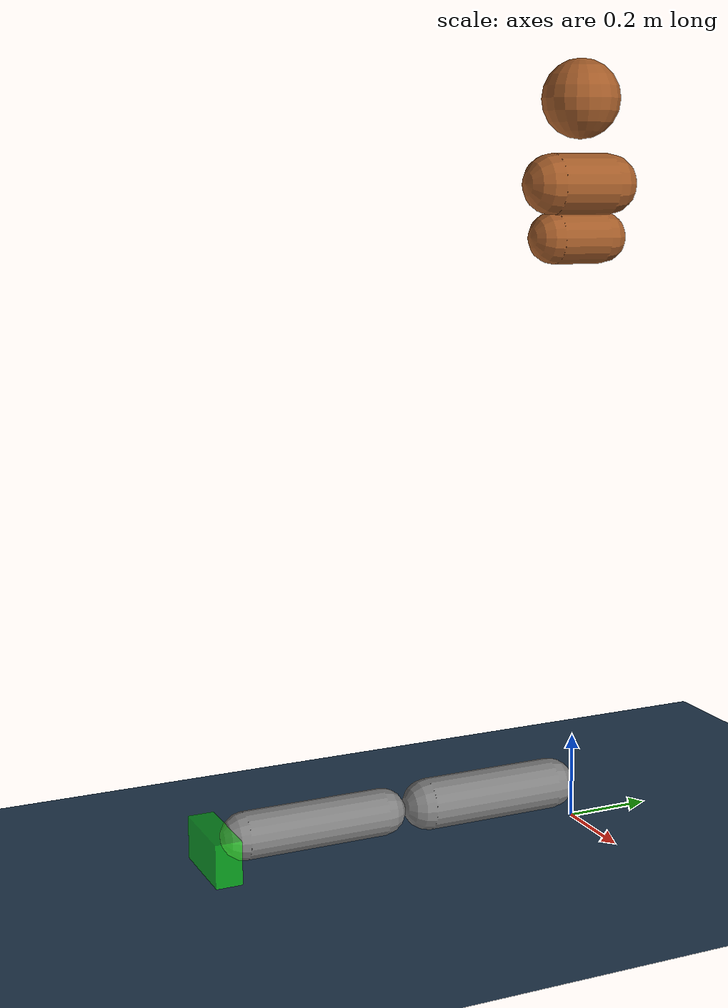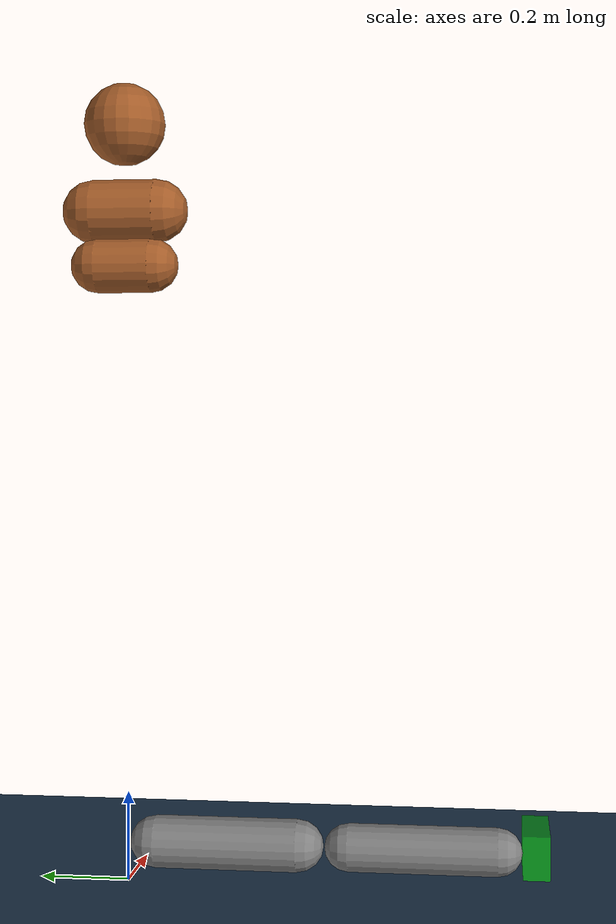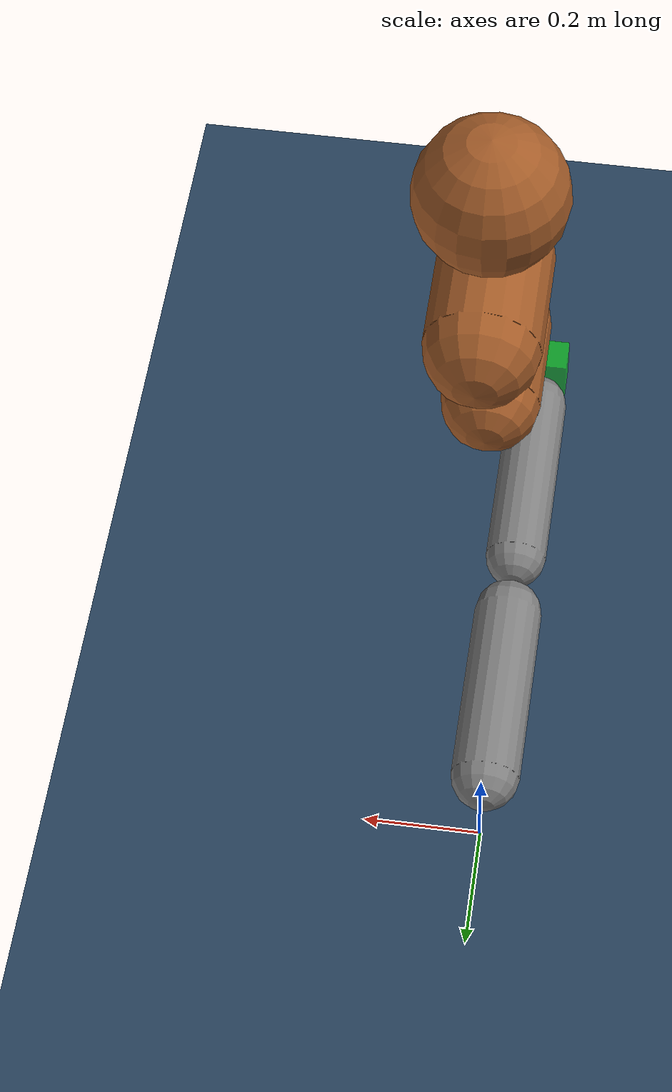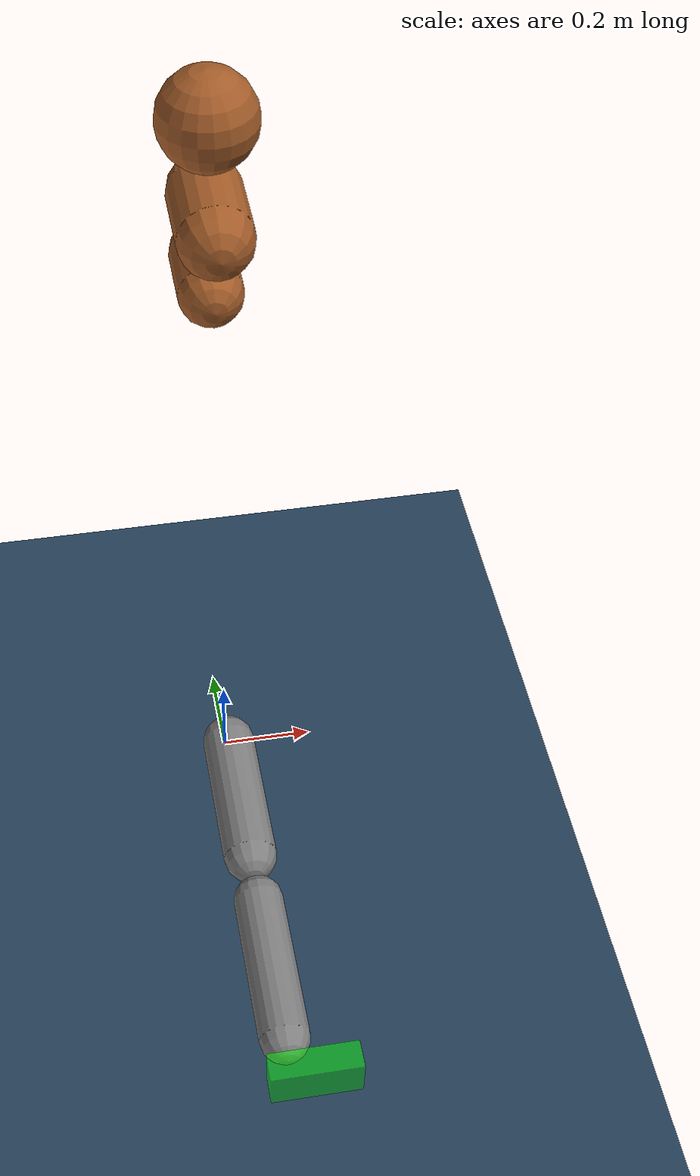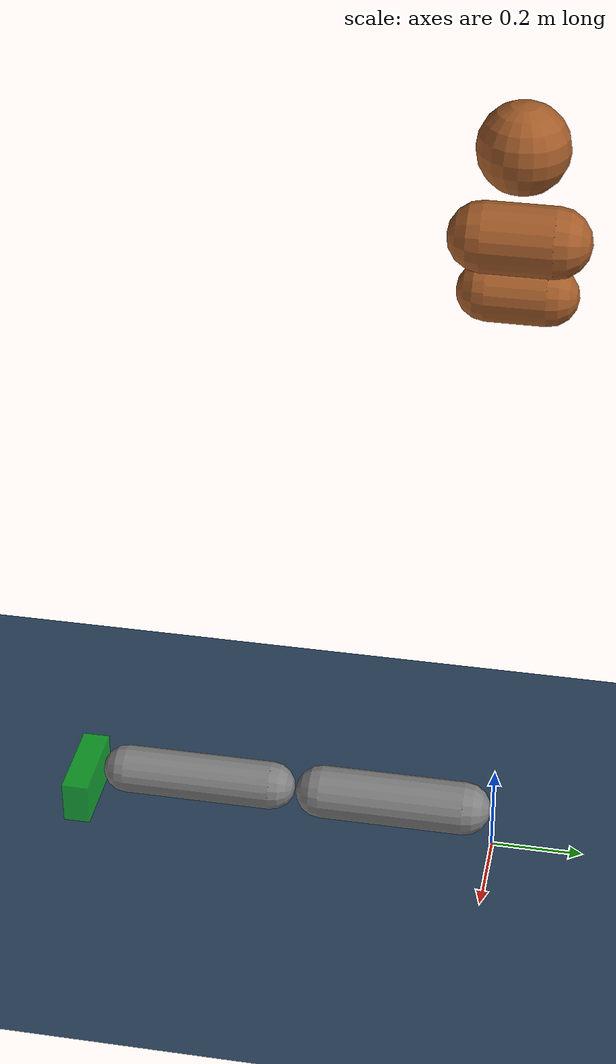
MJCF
<mujoco model="BaseHumanoidRobot">
    <!-- 时间步长为0.005秒 -->
    <option timestep="0.005" />

    <!-- 定义了模型中使用的纹理、材料和其它资源 -->
    <asset>
        <texture type="skybox" builtin="gradient" rgb1=".3 .5 .7" rgb2="0 0 0" width="512"
            height="512" />
        <texture name="body" type="cube" builtin="flat" mark="cross" width="127" height="1278"
            rgb1="0.8 0.6 0.4" rgb2="0.8 0.6 0.4" markrgb="1 1 1" random="0.01" />
        <material name="body" texture="body" texuniform="true" rgba="0.8 0.6 .4 1" />
        <texture name="grid" type="2d" builtin="checker" width="512" height="512" rgb1=".1 .2 .3"
            rgb2=".2 .3 .4" />
        <material name="grid" texture="grid" texrepeat="1 1" texuniform="true" reflectance=".2" />
    </asset>

    <!-- 定义了默认的几何形状、关节和其他元素的属性。 -->
    <default>
        <motor ctrlrange="-1 1" ctrllimited="true" />
        <default class="body">
            <geom type="capsule" condim="1" friction=".7" solimp=".9 .99 .003" solref=".015 1"
                material="body" />
            <joint type="hinge" damping=".2" stiffness="1" armature=".01" limited="true"
                solimplimit="0 .99 .01" />
            <default class="big_joint">
                <joint damping="5" stiffness="10" />
                <default class="big_stiff_joint">
                    <joint stiffness="20" />
                </default>
            </default>
        </default>
    </default>

    <!-- 定义了视觉设置，如渲染质量、阴影大小、全局分辨率等。 -->
    <visual>
        <map force="0.1" zfar="30" />
        <rgba haze="0.15 0.25 0.35 1" />
        <quality shadowsize="4096" />
        <global offwidth="800" offheight="800" />
    </visual>

    <!-- 定义了模型的世界体，包括了所有的刚体、关节、几何体、传感器等。 -->
    <worldbody>
        <!-- 定义地面的几何体 -->
        <geom name="floor" size="0 0 .05" type="plane" material="grid" condim="3" />
        <!-- 定义一个聚光灯 -->
        <!-- 它的位置在(0, -20, 4)处，即机器人躯干下方20单位处，向上4单位 -->
        <!-- 聚光灯的颜色为白色，漫反射系数为0.8，镜面反射系数为0.3，切光角为10度 -->
        <!-- 它会跟踪名为"torso"的刚体的中心  -->
        <light name="spotlight" mode="targetbodycom" target="torso"
            diffuse=".8 .8 .8" specular="0.3 0.3 0.3" pos="0 -20 4" cutoff="10" />
        <!-- 定义躯干刚体 -->
        <body name="torso" pos="0 0 1.5" childclass="body">
            <!-- 定义了一个名为"top"的光源，它的位置在(0, 0, 2)处，即躯干正上方2单位处。这个光源会跟踪躯干的中心。 -->
            <light name="top" pos="0 0 2" mode="trackcom" />
            <!-- 定义了一个名为"back"的摄像头 -->
            <!-- 它的位置在(-3, 0, 1)处，即躯干后方3单位处，高度1单位 -->
            <!-- 摄像头的视野方向是沿着y轴负方向看，x轴正方向是向上的。它会跟踪躯干的中心。 -->
            <camera name="back" pos="-3 0 1" xyaxes="0 -1 0 1 0 2" mode="trackcom" />
            <!-- 定义了一个名为"side"的摄像头 -->
            <!-- 它的位置在(0, -3, 1)处，即躯干左侧3单位处，高度1单位 -->
            <!-- 摄像头的视野方向是沿着x轴正方向看，y轴正方向是向上的。它会跟踪躯干的中心。 -->
            <camera name="side" pos="0 -3 1" xyaxes="1 0 0 0 1 2" mode="trackcom" />
            <!-- 定义了一个名为"root"的根关节，它允许躯干在空间中自由移动。 -->
            <freejoint name="root" />
            <!-- 定义了一个名为"torso"的几何体，它是一个胶囊形状，表示躯干的主体。其起始点在(0, -0.07, 0)，终点在(0, 0.07, 0)，大小为0.07单位。 -->
            <geom name="torso" fromto="0 -.07 0 0 .07 0" size=".07" />
            <!-- 定义了一个名为"upper_waist"的几何体，它是一个胶囊形状，表示躯干的上腰部。其起始点和终点定义了上腰部的位置和大小，大小为0.06单位。 -->
            <geom name="upper_waist" fromto="-.01 -.06 -.12 -.01 .06 -.12" size=".06" />
            <!-- 定义了一个名为"head"的刚体，表示头部，其位置在(0, 0, 0.19)处，即躯干正上方0.19单位。 -->
            <body name="head" pos="0 0 .19">
                <!-- 头部是一个球形几何体，大小为0.09单位。 -->
                <geom name="head" type="sphere" size=".09" />
                <!-- 定义一个名为"egocentric"的摄像头 -->
                <!-- 它的位置在(0.09, 0, 0)处，即头部前方0.09单位处，视野方向是沿着y轴负方向看，x轴正方向是向前的 -->
                <!-- 它会跟踪头部的中心，并且有一个80度的视野角。 -->
                <camera name="egocentric" pos=".09 0 0" xyaxes="0 -1 0 .1 0 1" fovy="80" />
            </body>
        </body>
        <!-- 定义右髋关节刚体 -->
        <body name="right_hip_1" pos="0 0 0.090546133">
            <!-- 定义了一个名为"right_hip_1"的球形关节，它允许在三个轴上旋转。关节位于右髋关节刚体的中心。 -->
            <joint name="right_hip_1" pos="0 0 0" type="ball" />
            <!-- 定义了一个胶囊形状的几何体，它表示右髋关节的外形。 -->
            <!-- 几何体的位置在(0, -0.224, 0)，四元数(quat)定义了其方向（这里是一个45度角绕y轴旋转），胶囊的尺寸为直径0.05866单位，长度0.16单位。 -->
            <geom pos="0 -0.224 0" quat="0.707107 -0.707107 0 0" type="capsule" size="0.05866 0.16" />
            <!-- 定义右膝关节刚体 -->
            <body name="right_knee_1" pos="0 -0.449648 0">
                <!-- 定义了一个名为"right_knee_1"的关节，它允许沿着z轴旋转，并且有运动范围限制，从-π到0弧度，即只能向一个方向旋转。 -->
                <joint name="right_knee_1" pos="0 0 0" axis="0 0 1" limited="true" range="-3.14 0" />
                <!-- 定义了一个胶囊形状的几何体，表示右膝关节的外形 -->
                <!-- 几何体的位置在(0, -0.2133, 0)，四元数定义了其方向（45度角绕y轴旋转），胶囊的尺寸为直径0.0533单位，长度0.16533单位。 -->
                <geom pos="0 -0.2133 0" quat="0.707107 -0.707107 0 0" type="capsule" size="0.0533 0.16533" />
                <!-- 定义右踝关节刚体 -->
                <body name="right_ankle_1" pos="0 -0.43719466 0">
                    <!-- 定义了一个名为"right_ankle_1"的球形关节，它允许在三个轴上旋转。关节位于右踝关节刚体的中心。 -->
                    <joint name="right_ankle_1" pos="0 0 0" type="ball" />
                    <!-- 定义了一个盒子形状的几何体，表示右脚的外形 -->
                    <!-- 几何体的位置在(0.048, -0.024, 0)，盒子的大小为长0.0944单位，宽0.02933单位，高0.048单位。RGBA颜色设置为绿色，并且透明度为0.5。 -->
                    <geom pos="0.048 -0.024 0" type="box" size="0.0944 0.02933 0.048" rgba="0 1 0 0.5" />
                </body>
            </body>
        </body>
    </worldbody>
</mujoco>
